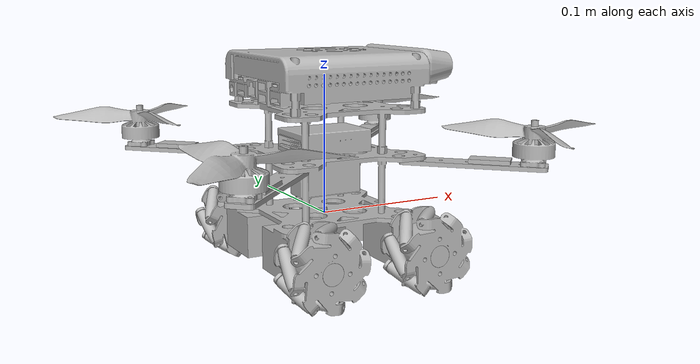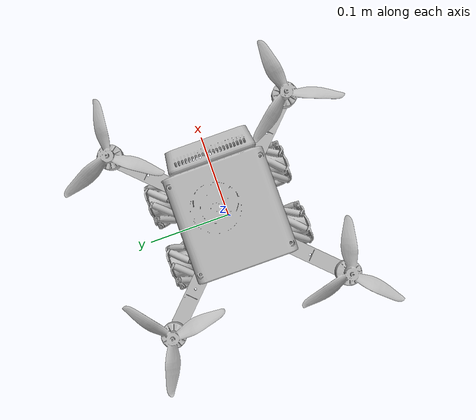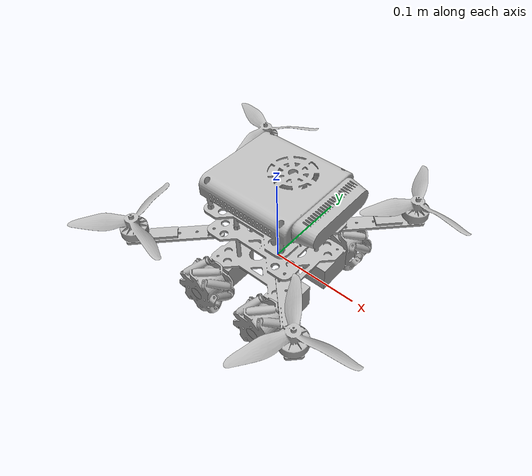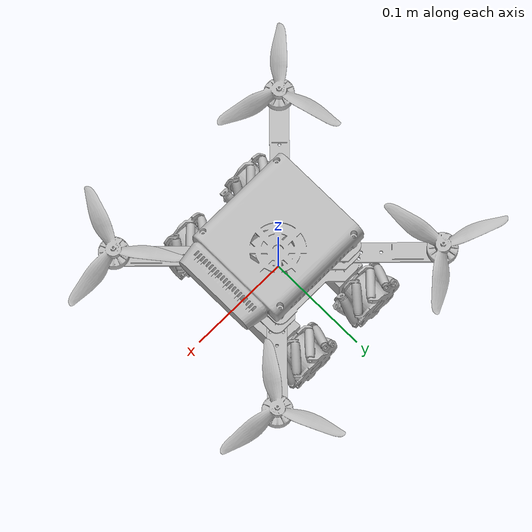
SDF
<sdf version='1.7'>
  <model name='uav_v4'>
    <link name='base_link'>
      <inertial>
        <pose>0.002721 3.2e-05 0.016326 0 -0 0</pose>
        <mass>2.2782</mass>
        <inertia>
          <ixx>0.0010088</ixx>
          <ixy>-1.2793e-06</ixy>
          <ixz>5.9514e-06</ixz>
          <iyy>0.00068372</iyy>
          <iyz>7.939e-06</iyz>
          <izz>0.0014123</izz>
        </inertia>
      </inertial>
      <collision name='base_link_collision'>
        <pose>0 0 0 0 -0 0</pose>
        <geometry>
          <mesh>
            <scale>1 1 1</scale>
            <uri>model://uav_v4/meshes/base_link.STL</uri>
          </mesh>
        </geometry>
      </collision>
      <visual name='base_link_visual'>
        <pose>0 0 0 0 -0 0</pose>
        <geometry>
          <mesh>
            <scale>1 1 1</scale>
            <uri>model://uav_v4/meshes/base_link.STL</uri>
          </mesh>
        </geometry>
      </visual>
    </link>
    <joint name='arm1_joint' type='revolute'>
      <pose relative_to='base_link'>0.0475 -0.0455 0.04 0 -0 0</pose>
      <parent>base_link</parent>
      <child>arm1_link</child>
      <axis>
        <xyz>0 0 1</xyz>
        <limit>
          <lower>-3.14</lower>
          <upper>3.14</upper>
          <effort>1</effort>
          <velocity>1</velocity>
        </limit>
        <dynamics>
          <spring_reference>0</spring_reference>
          <spring_stiffness>0</spring_stiffness>
        </dynamics>
      </axis>
    </joint>
    <link name='arm1_link'>
      <pose relative_to='arm1_joint'>0 0 0 0 -0 0</pose>
      <inertial>
        <pose>0.029359 -0.029033 0.001856 0 -0 0</pose>
        <mass>0.010108</mass>
        <inertia>
          <ixx>3.6495e-06</ixx>
          <ixy>3.4138e-06</ixy>
          <ixz>-5.9984e-21</ixz>
          <iyy>3.7257e-06</iyy>
          <iyz>6.5036e-21</iyz>
          <izz>7.3601e-06</izz>
        </inertia>
      </inertial>
      <collision name='arm1_link_collision'>
        <pose>0 0 0 0 -0 0</pose>
        <geometry>
          <mesh>
            <scale>1 1 1</scale>
            <uri>model://uav_v4/meshes/arm1_link.STL</uri>
          </mesh>
        </geometry>
      </collision>
      <visual name='arm1_link_visual'>
        <pose>0 0 0 0 -0 0</pose>
        <geometry>
          <mesh>
            <scale>1 1 1</scale>
            <uri>model://uav_v4/meshes/arm1_link.STL</uri>
          </mesh>
        </geometry>
      </visual>
    </link>
    <joint name='wing1_joint' type='revolute'>
      <pose relative_to='arm1_link'>0.057004 -0.05632 0.0293 0 -0 0</pose>
      <parent>arm1_link</parent>
      <child>wing1_link</child>
      <axis>
        <xyz>0 0 -1</xyz>
        <limit>
          <lower>-1e+16</lower>
          <upper>1e+16</upper>
        </limit>
        <dynamics>
          <spring_reference>0</spring_reference>
          <spring_stiffness>0</spring_stiffness>
        </dynamics>
      </axis>
    </joint>
    <link name='wing1_link'>
      <pose relative_to='wing1_joint'>0 0 0 0 -0 0</pose>
      <inertial>
        <pose>-0.000121 6.8e-05 -0.015469 0 -0 0</pose>
        <mass>0.14356</mass>
        <inertia>
          <ixx>1.0711e-05</ixx>
          <ixy>3.8436e-10</ixy>
          <ixz>-7.0473e-12</ixz>
          <iyy>1.0711e-05</iyy>
          <iyz>7.1694e-11</iyz>
          <izz>1.5206e-05</izz>
        </inertia>
      </inertial>
      <collision name='wing1_link_collision'>
        <pose>0 0 0 0 -0 0</pose>
        <geometry>
          <mesh>
            <scale>1 1 1</scale>
            <uri>model://uav_v4/meshes/wing1_link.STL</uri>
          </mesh>
        </geometry>
      </collision>
      <visual name='wing1_link_visual'>
        <pose>0 0 0 0 -0 0</pose>
        <geometry>
          <mesh>
            <scale>1 1 1</scale>
            <uri>model://uav_v4/meshes/wing1_link.STL</uri>
          </mesh>
        </geometry>
      </visual>
    </link>
    <joint name='arm2_joint' type='revolute'>
      <pose relative_to='base_link'>-0.0475 0.0455 0.04 0 -0 0</pose>
      <parent>base_link</parent>
      <child>arm2_link</child>
      <axis>
        <xyz>0 0 1</xyz>
        <limit>
          <lower>-3.14</lower>
          <upper>3.14</upper>
          <effort>1</effort>
          <velocity>1</velocity>
        </limit>
        <dynamics>
          <spring_reference>0</spring_reference>
          <spring_stiffness>0</spring_stiffness>
        </dynamics>
      </axis>
    </joint>
    <link name='arm2_link'>
      <pose relative_to='arm2_joint'>0 0 0 0 -0 0</pose>
      <inertial>
        <pose>-0.029296 0.028971 0.001856 0 -0 0</pose>
        <mass>0.0101076</mass>
        <inertia>
          <ixx>3.64954e-06</ixx>
          <ixy>3.41382e-06</ixy>
          <ixz>-1.77689e-21</ixz>
          <iyy>3.72567e-06</iyy>
          <iyz>2.36511e-21</iyz>
          <izz>7.36005e-06</izz>
        </inertia>
      </inertial>
      <collision name='arm2_link_collision'>
        <pose>0 0 0 0 -0 0</pose>
        <geometry>
          <mesh>
            <scale>1 1 1</scale>
            <uri>model://uav_v4/meshes/arm2_link.STL</uri>
          </mesh>
        </geometry>
      </collision>
      <visual name='arm2_link_visual'>
        <pose>0 0 0 0 -0 0</pose>
        <geometry>
          <mesh>
            <scale>1 1 1</scale>
            <uri>model://uav_v4/meshes/arm2_link.STL</uri>
          </mesh>
        </geometry>
      </visual>
    </link>
    <joint name='wing2_joint' type='revolute'>
      <pose relative_to='arm2_link'>-0.056745 0.056256 0.0293 0 -0 0</pose>
      <parent>arm2_link</parent>
      <child>wing2_link</child>
      <axis>
        <xyz>0 0 -1</xyz>
        <limit>
          <lower>-1e+16</lower>
          <upper>1e+16</upper>
        </limit>
        <dynamics>
          <spring_reference>0</spring_reference>
          <spring_stiffness>0</spring_stiffness>
        </dynamics>
      </axis>
    </joint>
    <link name='wing2_link'>
      <pose relative_to='wing2_joint'>0 0 0 0 -0 0</pose>
      <inertial>
        <pose>-0.000138 -3e-06 -0.015469 0 -0 0</pose>
        <mass>0.14356</mass>
        <inertia>
          <ixx>1.0711e-05</ixx>
          <ixy>-2.2212e-10</ixy>
          <ixz>-2.8595e-11</ixz>
          <iyy>1.0711e-05</iyy>
          <iyz>-9.5706e-11</iyz>
          <izz>1.5206e-05</izz>
        </inertia>
      </inertial>
      <collision name='wing2_link_collision'>
        <pose>0 0 0 0 -0 0</pose>
        <geometry>
          <mesh>
            <scale>1 1 1</scale>
            <uri>model://uav_v4/meshes/wing2_link.STL</uri>
          </mesh>
        </geometry>
      </collision>
      <visual name='wing2_link_visual'>
        <pose>0 0 0 0 -0 0</pose>
        <geometry>
          <mesh>
            <scale>1 1 1</scale>
            <uri>model://uav_v4/meshes/wing2_link.STL</uri>
          </mesh>
        </geometry>
      </visual>
    </link>
    <joint name='arm3_joint' type='revolute'>
      <pose relative_to='base_link'>0.0475 0.0455 0.04 0 -0 0</pose>
      <parent>base_link</parent>
      <child>arm3_link</child>
      <axis>
        <xyz>0 0 1</xyz>
        <limit>
          <lower>-3.14</lower>
          <upper>3.14</upper>
          <effort>1</effort>
          <velocity>1</velocity>
        </limit>
        <dynamics>
          <spring_reference>0</spring_reference>
          <spring_stiffness>0</spring_stiffness>
        </dynamics>
      </axis>
    </joint>
    <link name='arm3_link'>
      <pose relative_to='arm3_joint'>0 0 0 0 -0 0</pose>
      <inertial>
        <pose>0.029033 0.029359 0.001856 0 -0 0</pose>
        <mass>0.010108</mass>
        <inertia>
          <ixx>3.7257e-06</ixx>
          <ixy>-3.4138e-06</ixy>
          <ixz>8.2237e-21</ixz>
          <iyy>3.6495e-06</iyy>
          <iyz>8.7612e-21</iyz>
          <izz>7.3601e-06</izz>
        </inertia>
      </inertial>
      <collision name='arm3_link_collision'>
        <pose>0 0 0 0 -0 0</pose>
        <geometry>
          <mesh>
            <scale>1 1 1</scale>
            <uri>model://uav_v4/meshes/arm3_link.STL</uri>
          </mesh>
        </geometry>
      </collision>
      <visual name='arm3_link_visual'>
        <pose>0 0 0 0 -0 0</pose>
        <geometry>
          <mesh>
            <scale>1 1 1</scale>
            <uri>model://uav_v4/meshes/arm3_link.STL</uri>
          </mesh>
        </geometry>
      </visual>
    </link>
    <joint name='wing3_joint' type='revolute'>
      <pose relative_to='arm3_link'>0.056119 0.056844 0.0293 0 -0 0</pose>
      <parent>arm3_link</parent>
      <child>wing3_link</child>
      <axis>
        <xyz>0 0 -1</xyz>
        <limit>
          <lower>-1e+16</lower>
          <upper>1e+16</upper>
        </limit>
        <dynamics>
          <spring_reference>0</spring_reference>
          <spring_stiffness>0</spring_stiffness>
        </dynamics>
      </axis>
    </joint>
    <link name='wing3_link'>
      <pose relative_to='wing3_joint'>0 0 0 0 -0 0</pose>
      <inertial>
        <pose>0.000133 3.9e-05 -0.015469 0 -0 0</pose>
        <mass>0.14356</mass>
        <inertia>
          <ixx>1.0711e-05</ixx>
          <ixy>9.743e-11</ixy>
          <ixz>8.2675e-13</ixz>
          <iyy>1.071e-05</iyy>
          <iyz>-1.3698e-10</iyz>
          <izz>1.5205e-05</izz>
        </inertia>
      </inertial>
      <collision name='wing3_link_collision'>
        <pose>0 0 0 0 -0 0</pose>
        <geometry>
          <mesh>
            <scale>1 1 1</scale>
            <uri>model://uav_v4/meshes/wing3_link.STL</uri>
          </mesh>
        </geometry>
      </collision>
      <visual name='wing3_link_visual'>
        <pose>0 0 0 0 -0 0</pose>
        <geometry>
          <mesh>
            <scale>1 1 1</scale>
            <uri>model://uav_v4/meshes/wing3_link.STL</uri>
          </mesh>
        </geometry>
      </visual>
    </link>
    <joint name='arm4_joint' type='revolute'>
      <pose relative_to='base_link'>-0.0475 -0.0455 0.04 0 -0 0</pose>
      <parent>base_link</parent>
      <child>arm4_link</child>
      <axis>
        <xyz>0 0 1</xyz>
        <limit>
          <lower>-3.14</lower>
          <upper>3.14</upper>
          <effort>1</effort>
          <velocity>1</velocity>
        </limit>
        <dynamics>
          <spring_reference>0</spring_reference>
          <spring_stiffness>0</spring_stiffness>
        </dynamics>
      </axis>
    </joint>
    <link name='arm4_link'>
      <pose relative_to='arm4_joint'>0 0 0 0 -0 0</pose>
      <inertial>
        <pose>-0.029033 -0.029359 0.001856 0 -0 0</pose>
        <mass>0.010108</mass>
        <inertia>
          <ixx>3.7257e-06</ixx>
          <ixy>-3.4138e-06</ixy>
          <ixz>3.5619e-21</ixz>
          <iyy>3.6495e-06</iyy>
          <iyz>3.8509e-21</iyz>
          <izz>7.3601e-06</izz>
        </inertia>
      </inertial>
      <collision name='arm4_link_collision'>
        <pose>0 0 0 0 -0 0</pose>
        <geometry>
          <mesh>
            <scale>1 1 1</scale>
            <uri>model://uav_v4/meshes/arm4_link.STL</uri>
          </mesh>
        </geometry>
      </collision>
      <visual name='arm4_link_visual'>
        <pose>0 0 0 0 -0 0</pose>
        <geometry>
          <mesh>
            <scale>1 1 1</scale>
            <uri>model://uav_v4/meshes/arm4_link.STL</uri>
          </mesh>
        </geometry>
      </visual>
    </link>
    <joint name='wing4_joint' type='revolute'>
      <pose relative_to='arm4_link'>-0.056169 -0.056994 0.0293 0 -0 0</pose>
      <parent>arm4_link</parent>
      <child>wing4_link</child>
      <axis>
        <xyz>0 0 -1</xyz>
        <limit>
          <lower>-1e+16</lower>
          <upper>1e+16</upper>
        </limit>
        <dynamics>
          <spring_reference>0</spring_reference>
          <spring_stiffness>0</spring_stiffness>
        </dynamics>
      </axis>
    </joint>
    <link name='wing4_link'>
      <pose relative_to='wing4_joint'>0 0 0 0 -0 0</pose>
      <inertial>
        <pose>-8.3e-05 0.000111 -0.015469 0 -0 0</pose>
        <mass>0.14356</mass>
        <inertia>
          <ixx>1.0711e-05</ixx>
          <ixy>-2.2056e-10</ixy>
          <ixz>-5.3232e-12</ixz>
          <iyy>1.0711e-05</iyy>
          <iyz>-1.1229e-10</iyz>
          <izz>1.5206e-05</izz>
        </inertia>
      </inertial>
      <collision name='wing4_link_collision'>
        <pose>0 0 0 0 -0 0</pose>
        <geometry>
          <mesh>
            <scale>1 1 1</scale>
            <uri>model://uav_v4/meshes/wing4_link.STL</uri>
          </mesh>
        </geometry>
      </collision>
      <visual name='wing4_link_visual'>
        <pose>0 0 0 0 -0 0</pose>
        <geometry>
          <mesh>
            <scale>1 1 1</scale>
            <uri>model://uav_v4/meshes/wing4_link.STL</uri>
          </mesh>
        </geometry>
      </visual>
    </link>
    <joint name='wheel1_joint' type='revolute'>
      <pose relative_to='base_link'>0.04 -0.088 -0.015 0 -0 0</pose>
      <parent>base_link</parent>
      <child>wheel1_link</child>
      <axis>
        <xyz>0 1 0</xyz>
        <limit>
          <lower>-1e+16</lower>
          <upper>1e+16</upper>
        </limit>
        <dynamics>
          <spring_reference>0</spring_reference>
          <spring_stiffness>0</spring_stiffness>
        </dynamics>
      </axis>
    </joint>
    <link name='wheel1_link'>
      <pose relative_to='wheel1_joint'>0 0 0 0 -0 0</pose>
      <inertial>
        <pose>-0 0.015781 -0 0 -0 0</pose>
        <mass>0.037807</mass>
        <inertia>
          <ixx>4.513e-06</ixx>
          <ixy>-1.3835e-21</ixy>
          <ixz>-1.7984e-20</ixz>
          <iyy>5.9992e-06</iyy>
          <iyz>-1.2662e-21</iyz>
          <izz>4.513e-06</izz>
        </inertia>
      </inertial>
      <collision name='wheel1_link_collision'>
        <pose>0 0 0 0 -0 0</pose>
        <geometry>
          <mesh>
            <scale>1 1 1</scale>
            <uri>model://uav_v4/meshes/wheel1_link.STL</uri>
          </mesh>
        </geometry>
      </collision>
      <visual name='wheel1_link_visual'>
        <pose>0 0 0 0 -0 0</pose>
        <geometry>
          <mesh>
            <scale>1 1 1</scale>
            <uri>model://uav_v4/meshes/wheel1_link.STL</uri>
          </mesh>
        </geometry>
      </visual>
    </link>
    <joint name='wheel2_joint' type='revolute'>
      <pose relative_to='base_link'>-0.04 -0.088 -0.015 0 -0 0</pose>
      <parent>base_link</parent>
      <child>wheel2_link</child>
      <axis>
        <xyz>0 1 0</xyz>
        <limit>
          <lower>-1e+16</lower>
          <upper>1e+16</upper>
        </limit>
        <dynamics>
          <spring_reference>0</spring_reference>
          <spring_stiffness>0</spring_stiffness>
        </dynamics>
      </axis>
    </joint>
    <link name='wheel2_link'>
      <pose relative_to='wheel2_joint'>0 0 0 0 -0 0</pose>
      <inertial>
        <pose>0 0.015781 -0 0 -0 0</pose>
        <mass>0.037807</mass>
        <inertia>
          <ixx>4.513e-06</ixx>
          <ixy>-1.3736e-21</ixy>
          <ixz>-1.8352e-20</ixz>
          <iyy>5.9992e-06</iyy>
          <iyz>-1.5042e-21</iyz>
          <izz>4.513e-06</izz>
        </inertia>
      </inertial>
      <collision name='wheel2_link_collision'>
        <pose>0 0 0 0 -0 0</pose>
        <geometry>
          <mesh>
            <scale>1 1 1</scale>
            <uri>model://uav_v4/meshes/wheel2_link.STL</uri>
          </mesh>
        </geometry>
      </collision>
      <visual name='wheel2_link_visual'>
        <pose>0 0 0 0 -0 0</pose>
        <geometry>
          <mesh>
            <scale>1 1 1</scale>
            <uri>model://uav_v4/meshes/wheel2_link.STL</uri>
          </mesh>
        </geometry>
      </visual>
    </link>
    <joint name='wheel3_joint' type='revolute'>
      <pose relative_to='base_link'>0.04 0.088 -0.015 0 -0 0</pose>
      <parent>base_link</parent>
      <child>wheel3_link</child>
      <axis>
        <xyz>0 -1 0</xyz>
        <limit>
          <lower>-1e+16</lower>
          <upper>1e+16</upper>
        </limit>
        <dynamics>
          <spring_reference>0</spring_reference>
          <spring_stiffness>0</spring_stiffness>
        </dynamics>
      </axis>
    </joint>
    <link name='wheel3_link'>
      <pose relative_to='wheel3_joint'>0 0 0 0 -0 0</pose>
      <inertial>
        <pose>-0 -0.015781 0 0 -0 0</pose>
        <mass>0.037807</mass>
        <inertia>
          <ixx>4.513e-06</ixx>
          <ixy>1.4366e-21</ixy>
          <ixz>1.0591e-20</ixz>
          <iyy>5.9992e-06</iyy>
          <iyz>-7.4952e-22</iyz>
          <izz>4.513e-06</izz>
        </inertia>
      </inertial>
      <collision name='wheel3_link_collision'>
        <pose>0 0 0 0 -0 0</pose>
        <geometry>
          <mesh>
            <scale>1 1 1</scale>
            <uri>model://uav_v4/meshes/wheel3_link.STL</uri>
          </mesh>
        </geometry>
      </collision>
      <visual name='wheel3_link_visual'>
        <pose>0 0 0 0 -0 0</pose>
        <geometry>
          <mesh>
            <scale>1 1 1</scale>
            <uri>model://uav_v4/meshes/wheel3_link.STL</uri>
          </mesh>
        </geometry>
      </visual>
    </link>
    <joint name='wheel4_joint' type='revolute'>
      <pose relative_to='base_link'>-0.04 0.088 -0.015 0 -0 0</pose>
      <parent>base_link</parent>
      <child>wheel4_link</child>
      <axis>
        <xyz>0 1 0</xyz>
        <limit>
          <lower>-1e+16</lower>
          <upper>1e+16</upper>
        </limit>
        <dynamics>
          <spring_reference>0</spring_reference>
          <spring_stiffness>0</spring_stiffness>
        </dynamics>
      </axis>
    </joint>
    <link name='wheel4_link'>
      <pose relative_to='wheel4_joint'>0 0 0 0 -0 0</pose>
      <inertial>
        <pose>-0 -0.015719 0 0 -0 0</pose>
        <mass>0.037807</mass>
        <inertia>
          <ixx>4.513e-06</ixx>
          <ixy>6.0908e-23</ixy>
          <ixz>1.5908e-20</ixz>
          <iyy>5.9992e-06</iyy>
          <iyz>-2.0557e-21</iyz>
          <izz>4.513e-06</izz>
        </inertia>
      </inertial>
      <collision name='wheel4_link_collision'>
        <pose>0 0 0 0 -0 0</pose>
        <geometry>
          <mesh>
            <scale>1 1 1</scale>
            <uri>model://uav_v4/meshes/wheel4_link.STL</uri>
          </mesh>
        </geometry>
      </collision>
      <visual name='wheel4_link_visual'>
        <pose>0 0 0 0 -0 0</pose>
        <geometry>
          <mesh>
            <scale>1 1 1</scale>
            <uri>model://uav_v4/meshes/wheel4_link.STL</uri>
          </mesh>
        </geometry>
      </visual>
    </link>
  </model>
</sdf>
